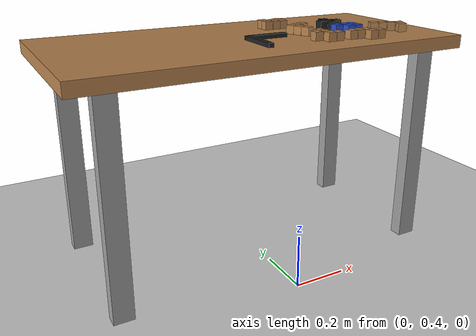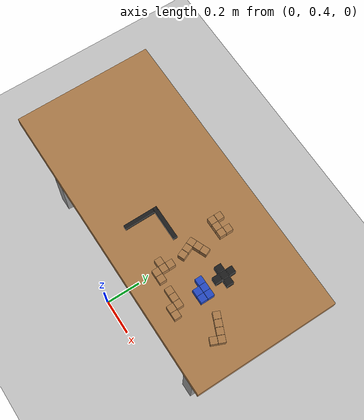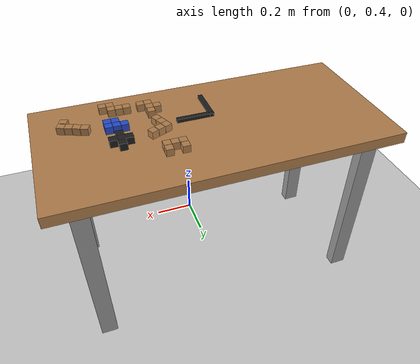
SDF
<?xml version="1.0" ?>
<!-- |    This document was autogenerated by xacro from euroc-freestyle.world.xacro    | -->
<!-- |    EDITING THIS FILE BY HAND IS NOT RECOMMENDED                                 | -->
<sdf version="1.4" xmlns:xacro="http://www.ros.org/wiki/xacro">
  <!-- only 4 yaws are allowed, given by tQ -->
  <!-- Only 0 and 3 (rotated -pi/2) accepted by now -->
  <!-- table pose in world frame -->
  <!-- pentomino-fixture name and pose in table frame -->
  <!-- grid pose in pentomino-fixture frame -->
  <!-- pentomino pose in grid frame -->
  <world name="pentomino_board6x5_8">
    <physics type='ode'>
      <ode>
            <solver>
               <type>quick</type>
            </solver>
      </ode>
      <max_step_size>0.005</max_step_size>
      <real_time_factor>1</real_time_factor>
      <real_time_update_rate>200</real_time_update_rate>
      <gravity>0 0 -9.8</gravity>
    </physics>
    <include>
      <uri>model://ground_plane</uri>
    </include>
    <include>
      <uri>model://sun</uri>
    </include>
    <include>
      <uri>model://DLR_workbench</uri>
      <name>workbench_fixture</name>
      <pose>0 0.8 00 0 0 4.71238898038</pose>
      <static>true</static>
    </include>
    <include>
      <uri>model://pentomino_fixture</uri>
      <pose>-0.01 0.73 0.85 0 0 4.71238898038</pose>
    </include>
    <include>
      <uri>model://pentomino_V</uri>
      <!-- if tQ == 3 -->
      <pose>0.198 0.785 0.85 0 0.0 5.11381470834</pose>
    </include>
    <include>
      <uri>model://pentomino_N</uri>
      <!-- if tQ == 3 -->
      <pose>0.396 0.587 0.883 0 3.14159265359 4.71238898038</pose>
    </include>
    <include>
      <uri>model://pentomino_F</uri>
      <!-- if tQ == 3 -->
      <pose>0.231 0.62 0.883 0 3.14159265359 4.71238898038</pose>
    </include>
    <include>
      <uri>model://pentomino_U</uri>
      <!-- if tQ == 3 -->
      <pose>0.198 0.917 0.85 0 0.0 4.71238898038</pose>
    </include>
    <include>
      <uri>model://pentomino_X</uri>
      <!-- if tQ == 3 -->
      <pose>0.396 0.818 0.85 0 0.0 4.71238898038</pose>
    </include>
    <include>
      <uri>model://pentomino_P</uri>
      <!-- if tQ == 3 -->
      <pose>0.396 0.719 0.85 0 0.0 4.71238898038</pose>
    </include>

    <include>
      <uri>model://pentomino_L</uri>
      <!-- if tQ == 3 -->
      <pose>0.586 0.668 0.850 0 0 -1.971889</pose>
    </include>
  </world>
</sdf>

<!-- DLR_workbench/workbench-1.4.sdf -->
<!-- |    This document was autogenerated by xacro from workbench-1.4.sdf.xacro        | -->
<!-- |    EDITING THIS FILE BY HAND IS NOT RECOMMENDED                                 | -->
<sdf version="1.4" xmlns:xacro="http://www.ros.org/wiki/xacro">
  <model name="DLR_workbench">
    <pose>0 0 0 0 0 0</pose>
    <static>false</static>
    <link name="main_body">
      <pose>0 0 0 0 0 0</pose>
      <!-- workbench top -->
      <collision name="top">
        <geometry>
          <box>
            <size>0.70 1.50 0.05</size>
          </box>
        </geometry>
        <pose>0 0 0.825 0 0 0</pose>
        <surface>
            <friction>
              <ode>
                <mu>0.7</mu>
                <mu2>0.7</mu2>
              </ode>
            </friction>
        </surface>
      </collision>
      <visual name="top">
        <geometry>
          <box>
            <size>0.70 1.50 0.05</size>
          </box>
        </geometry>
        <pose>0 0 0.825 0 0 0</pose>
        <material>
          <script>
            <name>Gazebo/Wood</name>
          </script>
        </material>
      </visual>
      <!-- left rear leg -->
      <collision name="left_rear_leg">
        <geometry>
          <box>
            <size>0.05 0.075 0.80</size>
          </box>
        </geometry>
        <pose>-0.275 -0.6225 0.40 0 0 0</pose>
      </collision>
      <visual name="left_rear_leg">
        <geometry>
          <box>
            <size>0.05 0.075 0.80</size>
          </box>
        </geometry>
        <pose>-0.275 -0.6225 0.40 0 0 0</pose>
        <material>
          <script>
            <name>Gazebo/Grey</name>
          </script>
        </material>
      </visual>
      <!-- right rear leg -->
      <collision name="left_rear_leg">
        <geometry>
          <box>
            <size>0.05 0.075 0.80</size>
          </box>
        </geometry>
        <pose>-0.275 0.6225 0.40 0 0 0</pose>
      </collision>
      <visual name="right_rear_leg">
        <geometry>
          <box>
            <size>0.05 0.075 0.80</size>
          </box>
        </geometry>
        <pose>-0.275 0.6225 0.40 0 0 0</pose>
        <material>
          <script>
            <name>Gazebo/Grey</name>
          </script>
        </material>
      </visual>
      <!-- left front leg -->
      <collision name="left_rear_leg">
        <geometry>
          <box>
            <size>0.05 0.075 0.80</size>
          </box>
        </geometry>
        <pose>0.275 -0.6225 0.40 0 0 0</pose>
      </collision>
      <visual name="left_front_leg">
        <geometry>
          <box>
            <size>0.05 0.075 0.80</size>
          </box>
        </geometry>
        <pose>0.275 -0.6225 0.40 0 0 0</pose>
        <material>
          <script>
            <name>Gazebo/Grey</name>
          </script>
        </material>
      </visual>
      <!-- right front leg -->
      <collision name="left_rear_leg">
        <geometry>
          <box>
            <size>0.05 0.075 0.80</size>
          </box>
        </geometry>
        <pose>0.275 0.6225 0.40 0 0 0</pose>
      </collision>
      <visual name="right_front_leg">
        <geometry>
          <box>
            <size>0.05 0.075 0.80</size>
          </box>
        </geometry>
        <pose>0.275 0.6225 0.40 0 0 0</pose>
        <material>
          <script>
            <name>Gazebo/Grey</name>
          </script>
        </material>
      </visual>
      <!-- inertial model -->
      <inertial>
        <pose>0 0 0.8204 0 0 0</pose>
        <mass>50.0</mass>
        <inertia>
          <!-- interias are tricky to compute -->
          <!-- http://answers.gazebosim.org/question/4372/the-inertia-matrix-explained/ -->
          <ixx>9.60785914583</ixx>
          <ixy>0.0</ixy>
          <ixz>0.0</ixz>
          <iyy>2.20301594404</iyy>
          <iyz>0.0</iyz>
          <izz>11.5369686393</izz>
        </inertia>
      </inertial>
    </link>
  </model>
</sdf>

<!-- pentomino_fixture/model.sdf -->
<!-- |    This document was autogenerated by xacro from model.sdf.xacro                | -->
<!-- |    EDITING THIS FILE BY HAND IS NOT RECOMMENDED                                 | -->
<sdf version="1.4" xmlns:xacro="http://www.ros.org/wiki/xacro">
  <model name="pentomino_fixture">
    <static>true</static>
    <link name="pentomino_fixture">
      <collision name="bar_H">
        <geometry>
          <box>
            <size>0.02 0.17 0.016</size>
          </box>
        </geometry>
        <pose>-0.01 0.065 0.008 0 0 0</pose>
      </collision>
      <visual name="bar_H">
        <geometry>
          <box>
            <size>0.02 0.17 0.016</size>
          </box>
        </geometry>
        <pose>-0.01 0.065 0.008 0 0 0</pose>
        <material>
          <script>
            <name>Gazebo/Black</name>
          </script>
        </material>
      </visual>
      <collision name="bar_V">
        <geometry>
          <box>
            <size>0.02 0.17 0.016</size>
          </box>
        </geometry>
        <pose>0.065 -0.01 0.008 0 0 1.57079632679</pose>
      </collision>
      <visual name="bar_V">
        <geometry>
          <box>
            <size>0.02 0.17 0.016</size>
          </box>
        </geometry>
        <pose>0.065 -0.01 0.008 0 0 1.57079632679</pose>
        <material>
          <script>
            <name>Gazebo/Black</name>
          </script>
        </material>
      </visual>
    </link>
  </model>
</sdf>

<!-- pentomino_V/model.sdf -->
<!-- |    This document was autogenerated by xacro from V.xacro                        | -->
<!-- |    EDITING THIS FILE BY HAND IS NOT RECOMMENDED                                 | -->
<sdf version="1.4" xmlns:xacro="http://www.ros.org/wiki/xacro">
  <model name="pentomino_V">
    <link name="pentomino_V">
      <velocity_decay>
        <linear>0.01</linear>
        <angular>1.0</angular>
      </velocity_decay>
      <visual name="cube_0_0">
        <pose>0.0 0.0 0.0165 0 0 0</pose>
        <geometry>
          <box>
            <size>0.033 0.033 0.033</size>
          </box>
        </geometry>
        <material>
          <script>
            <name>Gazebo/Wood</name>
          </script>
        </material>
      </visual>
      <collision name="cube_0_0">
        <pose>0.0 0.0 0.0165 0 0 0</pose>
        <geometry>
          <box>
            <size>0.033 0.033 0.033</size>
          </box>
        </geometry>
        <surface>
          <bounce>
            <restitution_coefficient>0.0</restitution_coefficient>
          </bounce>
          <friction>
            <ode>
              <mu>1.0</mu>
              <mu2>1.0</mu2>
            </ode>
          </friction>
        </surface>
      </collision>
      <visual name="cube_1_0">
        <pose>0.034 0.0 0.0165 0 0 0</pose>
        <geometry>
          <box>
            <size>0.033 0.033 0.033</size>
          </box>
        </geometry>
        <material>
          <script>
            <name>Gazebo/Wood</name>
          </script>
        </material>
      </visual>
      <collision name="cube_1_0">
        <pose>0.034 0.0 0.0165 0 0 0</pose>
        <geometry>
          <box>
            <size>0.033 0.033 0.033</size>
          </box>
        </geometry>
        <surface>
          <bounce>
            <restitution_coefficient>0.0</restitution_coefficient>
          </bounce>
          <friction>
            <ode>
              <mu>1.0</mu>
              <mu2>1.0</mu2>
            </ode>
          </friction>
        </surface>
      </collision>
      <visual name="cube_2_0">
        <pose>0.068 0.0 0.0165 0 0 0</pose>
        <geometry>
          <box>
            <size>0.033 0.033 0.033</size>
          </box>
        </geometry>
        <material>
          <script>
            <name>Gazebo/Wood</name>
          </script>
        </material>
      </visual>
      <collision name="cube_2_0">
        <pose>0.068 0.0 0.0165 0 0 0</pose>
        <geometry>
          <box>
            <size>0.033 0.033 0.033</size>
          </box>
        </geometry>
        <surface>
          <bounce>
            <restitution_coefficient>0.0</restitution_coefficient>
          </bounce>
          <friction>
            <ode>
              <mu>1.0</mu>
              <mu2>1.0</mu2>
            </ode>
          </friction>
        </surface>
      </collision>
      <visual name="cube_0_1">
        <pose>0.0 0.034 0.0165 0 0 0</pose>
        <geometry>
          <box>
            <size>0.033 0.033 0.033</size>
          </box>
        </geometry>
        <material>
          <script>
            <name>Gazebo/Wood</name>
          </script>
        </material>
      </visual>
      <collision name="cube_0_1">
        <pose>0.0 0.034 0.0165 0 0 0</pose>
        <geometry>
          <box>
            <size>0.033 0.033 0.033</size>
          </box>
        </geometry>
        <surface>
          <bounce>
            <restitution_coefficient>0.0</restitution_coefficient>
          </bounce>
          <friction>
            <ode>
              <mu>1.0</mu>
              <mu2>1.0</mu2>
            </ode>
          </friction>
        </surface>
      </collision>
      <visual name="cube_0_2">
        <pose>0.0 0.068 0.0165 0 0 0</pose>
        <geometry>
          <box>
            <size>0.033 0.033 0.033</size>
          </box>
        </geometry>
        <material>
          <script>
            <name>Gazebo/Wood</name>
          </script>
        </material>
      </visual>
      <collision name="cube_0_2">
        <pose>0.0 0.068 0.0165 0 0 0</pose>
        <geometry>
          <box>
            <size>0.033 0.033 0.033</size>
          </box>
        </geometry>
        <surface>
          <bounce>
            <restitution_coefficient>0.0</restitution_coefficient>
          </bounce>
          <friction>
            <ode>
              <mu>1.0</mu>
              <mu2>1.0</mu2>
            </ode>
          </friction>
        </surface>
      </collision>
      <inertial name="cube_0_0">
        <pose>0.034 0.034 0.0165 0 0 0</pose>
        <mass>0.2</mass>
        <inertia>
          <ixx>0.02178</ixx>
          <!-- TODO -->
          <iyy>0.02178</iyy>
          <izz>0.02178</izz>
          <ixy>0</ixy>
          <ixz>0</ixz>
          <iyz>0</iyz>
        </inertia>
      </inertial>
    </link>
  </model>
</sdf>

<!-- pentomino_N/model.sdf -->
<!-- |    This document was autogenerated by xacro from N.xacro                        | -->
<!-- |    EDITING THIS FILE BY HAND IS NOT RECOMMENDED                                 | -->
<sdf version="1.4" xmlns:xacro="http://www.ros.org/wiki/xacro">
  <model name="pentomino_N">
    <link name="pentomino_N">
      <velocity_decay>
        <linear>0.01</linear>
        <angular>1.0</angular>
      </velocity_decay>
      <visual name="cube_0_0">
        <pose>0.0 0.0 0.0165 0 0 0</pose>
        <geometry>
          <box>
            <size>0.033 0.033 0.033</size>
          </box>
        </geometry>
        <material>
          <script>
            <name>Gazebo/Wood</name>
          </script>
        </material>
      </visual>
      <collision name="cube_0_0">
        <pose>0.0 0.0 0.0165 0 0 0</pose>
        <geometry>
          <box>
            <size>0.033 0.033 0.033</size>
          </box>
        </geometry>
        <surface>
          <bounce>
            <restitution_coefficient>0.0</restitution_coefficient>
          </bounce>
          <friction>
            <ode>
              <mu>1.0</mu>
              <mu2>1.0</mu2>
            </ode>
          </friction>
        </surface>
      </collision>
      <visual name="cube_0_-1">
        <pose>0.0 -0.034 0.0165 0 0 0</pose>
        <geometry>
          <box>
            <size>0.033 0.033 0.033</size>
          </box>
        </geometry>
        <material>
          <script>
            <name>Gazebo/Wood</name>
          </script>
        </material>
      </visual>
      <collision name="cube_0_-1">
        <pose>0.0 -0.034 0.0165 0 0 0</pose>
        <geometry>
          <box>
            <size>0.033 0.033 0.033</size>
          </box>
        </geometry>
        <surface>
          <bounce>
            <restitution_coefficient>0.0</restitution_coefficient>
          </bounce>
          <friction>
            <ode>
              <mu>1.0</mu>
              <mu2>1.0</mu2>
            </ode>
          </friction>
        </surface>
      </collision>
      <visual name="cube_0_-2">
        <pose>0.0 -0.068 0.0165 0 0 0</pose>
        <geometry>
          <box>
            <size>0.033 0.033 0.033</size>
          </box>
        </geometry>
        <material>
          <script>
            <name>Gazebo/Wood</name>
          </script>
        </material>
      </visual>
      <collision name="cube_0_-2">
        <pose>0.0 -0.068 0.0165 0 0 0</pose>
        <geometry>
          <box>
            <size>0.033 0.033 0.033</size>
          </box>
        </geometry>
        <surface>
          <bounce>
            <restitution_coefficient>0.0</restitution_coefficient>
          </bounce>
          <friction>
            <ode>
              <mu>1.0</mu>
              <mu2>1.0</mu2>
            </ode>
          </friction>
        </surface>
      </collision>
      <visual name="cube_-1_0">
        <pose>-0.034 0.0 0.0165 0 0 0</pose>
        <geometry>
          <box>
            <size>0.033 0.033 0.033</size>
          </box>
        </geometry>
        <material>
          <script>
            <name>Gazebo/Wood</name>
          </script>
        </material>
      </visual>
      <collision name="cube_-1_0">
        <pose>-0.034 0.0 0.0165 0 0 0</pose>
        <geometry>
          <box>
            <size>0.033 0.033 0.033</size>
          </box>
        </geometry>
        <surface>
          <bounce>
            <restitution_coefficient>0.0</restitution_coefficient>
          </bounce>
          <friction>
            <ode>
              <mu>1.0</mu>
              <mu2>1.0</mu2>
            </ode>
          </friction>
        </surface>
      </collision>
      <visual name="cube_-1_1">
        <pose>-0.034 0.034 0.0165 0 0 0</pose>
        <geometry>
          <box>
            <size>0.033 0.033 0.033</size>
          </box>
        </geometry>
        <material>
          <script>
            <name>Gazebo/Wood</name>
          </script>
        </material>
      </visual>
      <collision name="cube_-1_1">
        <pose>-0.034 0.034 0.0165 0 0 0</pose>
        <geometry>
          <box>
            <size>0.033 0.033 0.033</size>
          </box>
        </geometry>
        <surface>
          <bounce>
            <restitution_coefficient>0.0</restitution_coefficient>
          </bounce>
          <friction>
            <ode>
              <mu>1.0</mu>
              <mu2>1.0</mu2>
            </ode>
          </friction>
        </surface>
      </collision>
      <inertial name="cube_0_0">
        <pose>0.034 0.034 0.0165 0 0 0</pose>
        <mass>0.2</mass>
        <inertia>
          <ixx>0.02178</ixx>
          <!-- TODO -->
          <iyy>0.02178</iyy>
          <izz>0.02178</izz>
          <ixy>0</ixy>
          <ixz>0</ixz>
          <iyz>0</iyz>
        </inertia>
      </inertial>
    </link>
  </model>
</sdf>

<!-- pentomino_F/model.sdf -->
<!-- |    This document was autogenerated by xacro from F.xacro                        | -->
<!-- |    EDITING THIS FILE BY HAND IS NOT RECOMMENDED                                 | -->
<sdf version="1.4" xmlns:xacro="http://www.ros.org/wiki/xacro">
  <model name="pentomino_F">
    <link name="pentomino_F">
      <velocity_decay>
        <linear>0.01</linear>
        <angular>1.0</angular>
      </velocity_decay>
      <visual name="cube_0_0">
        <pose>0.0 0.0 0.0165 0 0 0</pose>
        <geometry>
          <box>
            <size>0.033 0.033 0.033</size>
          </box>
        </geometry>
        <material>
          <script>
            <name>Gazebo/Wood</name>
          </script>
        </material>
      </visual>
      <collision name="cube_0_0">
        <pose>0.0 0.0 0.0165 0 0 0</pose>
        <geometry>
          <box>
            <size>0.033 0.033 0.033</size>
          </box>
        </geometry>
        <surface>
          <bounce>
            <restitution_coefficient>0.0</restitution_coefficient>
          </bounce>
          <friction>
            <ode>
              <mu>1.0</mu>
              <mu2>1.0</mu2>
            </ode>
          </friction>
        </surface>
      </collision>
      <visual name="cube_0_-1">
        <pose>0.0 -0.034 0.0165 0 0 0</pose>
        <geometry>
          <box>
            <size>0.033 0.033 0.033</size>
          </box>
        </geometry>
        <material>
          <script>
            <name>Gazebo/Wood</name>
          </script>
        </material>
      </visual>
      <collision name="cube_0_-1">
        <pose>0.0 -0.034 0.0165 0 0 0</pose>
        <geometry>
          <box>
            <size>0.033 0.033 0.033</size>
          </box>
        </geometry>
        <surface>
          <bounce>
            <restitution_coefficient>0.0</restitution_coefficient>
          </bounce>
          <friction>
            <ode>
              <mu>1.0</mu>
              <mu2>1.0</mu2>
            </ode>
          </friction>
        </surface>
      </collision>
      <visual name="cube_1_0">
        <pose>0.034 0.0 0.0165 0 0 0</pose>
        <geometry>
          <box>
            <size>0.033 0.033 0.033</size>
          </box>
        </geometry>
        <material>
          <script>
            <name>Gazebo/Wood</name>
          </script>
        </material>
      </visual>
      <collision name="cube_1_0">
        <pose>0.034 0.0 0.0165 0 0 0</pose>
        <geometry>
          <box>
            <size>0.033 0.033 0.033</size>
          </box>
        </geometry>
        <surface>
          <bounce>
            <restitution_coefficient>0.0</restitution_coefficient>
          </bounce>
          <friction>
            <ode>
              <mu>1.0</mu>
              <mu2>1.0</mu2>
            </ode>
          </friction>
        </surface>
      </collision>
      <visual name="cube_-1_0">
        <pose>-0.034 0.0 0.0165 0 0 0</pose>
        <geometry>
          <box>
            <size>0.033 0.033 0.033</size>
          </box>
        </geometry>
        <material>
          <script>
            <name>Gazebo/Wood</name>
          </script>
        </material>
      </visual>
      <collision name="cube_-1_0">
        <pose>-0.034 0.0 0.0165 0 0 0</pose>
        <geometry>
          <box>
            <size>0.033 0.033 0.033</size>
          </box>
        </geometry>
        <surface>
          <bounce>
            <restitution_coefficient>0.0</restitution_coefficient>
          </bounce>
          <friction>
            <ode>
              <mu>1.0</mu>
              <mu2>1.0</mu2>
            </ode>
          </friction>
        </surface>
      </collision>
      <visual name="cube_-1_1">
        <pose>-0.034 0.034 0.0165 0 0 0</pose>
        <geometry>
          <box>
            <size>0.033 0.033 0.033</size>
          </box>
        </geometry>
        <material>
          <script>
            <name>Gazebo/Wood</name>
          </script>
        </material>
      </visual>
      <collision name="cube_-1_1">
        <pose>-0.034 0.034 0.0165 0 0 0</pose>
        <geometry>
          <box>
            <size>0.033 0.033 0.033</size>
          </box>
        </geometry>
        <surface>
          <bounce>
            <restitution_coefficient>0.0</restitution_coefficient>
          </bounce>
          <friction>
            <ode>
              <mu>1.0</mu>
              <mu2>1.0</mu2>
            </ode>
          </friction>
        </surface>
      </collision>
      <inertial name="cube_0_0">
        <pose>0.034 0.034 0.0165 0 0 0</pose>
        <mass>0.2</mass>
        <inertia>
          <ixx>0.02178</ixx>
          <!-- TODO -->
          <iyy>0.02178</iyy>
          <izz>0.02178</izz>
          <ixy>0</ixy>
          <ixz>0</ixz>
          <iyz>0</iyz>
        </inertia>
      </inertial>
    </link>
  </model>
</sdf>

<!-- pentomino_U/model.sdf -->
<!-- |    This document was autogenerated by xacro from U.xacro                        | -->
<!-- |    EDITING THIS FILE BY HAND IS NOT RECOMMENDED                                 | -->
<sdf version="1.4" xmlns:xacro="http://www.ros.org/wiki/xacro">
  <model name="pentomino_U">
    <link name="pentomino_U">
      <velocity_decay>
        <linear>0.01</linear>
        <angular>1.0</angular>
      </velocity_decay>
      <visual name="cube_0_0">
        <pose>0.0 0.0 0.0165 0 0 0</pose>
        <geometry>
          <box>
            <size>0.033 0.033 0.033</size>
          </box>
        </geometry>
        <material>
          <script>
            <name>Gazebo/Wood</name>
          </script>
        </material>
      </visual>
      <collision name="cube_0_0">
        <pose>0.0 0.0 0.0165 0 0 0</pose>
        <geometry>
          <box>
            <size>0.033 0.033 0.033</size>
          </box>
        </geometry>
        <surface>
          <bounce>
            <restitution_coefficient>0.0</restitution_coefficient>
          </bounce>
          <friction>
            <ode>
              <mu>1.0</mu>
              <mu2>1.0</mu2>
            </ode>
          </friction>
        </surface>
      </collision>
      <visual name="cube_0_-1">
        <pose>0.0 -0.034 0.0165 0 0 0</pose>
        <geometry>
          <box>
            <size>0.033 0.033 0.033</size>
          </box>
        </geometry>
        <material>
          <script>
            <name>Gazebo/Wood</name>
          </script>
        </material>
      </visual>
      <collision name="cube_0_-1">
        <pose>0.0 -0.034 0.0165 0 0 0</pose>
        <geometry>
          <box>
            <size>0.033 0.033 0.033</size>
          </box>
        </geometry>
        <surface>
          <bounce>
            <restitution_coefficient>0.0</restitution_coefficient>
          </bounce>
          <friction>
            <ode>
              <mu>1.0</mu>
              <mu2>1.0</mu2>
            </ode>
          </friction>
        </surface>
      </collision>
      <visual name="cube_0_1">
        <pose>0.0 0.034 0.0165 0 0 0</pose>
        <geometry>
          <box>
            <size>0.033 0.033 0.033</size>
          </box>
        </geometry>
        <material>
          <script>
            <name>Gazebo/Wood</name>
          </script>
        </material>
      </visual>
      <collision name="cube_0_1">
        <pose>0.0 0.034 0.0165 0 0 0</pose>
        <geometry>
          <box>
            <size>0.033 0.033 0.033</size>
          </box>
        </geometry>
        <surface>
          <bounce>
            <restitution_coefficient>0.0</restitution_coefficient>
          </bounce>
          <friction>
            <ode>
              <mu>1.0</mu>
              <mu2>1.0</mu2>
            </ode>
          </friction>
        </surface>
      </collision>
      <visual name="cube_-1_-1">
        <pose>-0.034 -0.034 0.0165 0 0 0</pose>
        <geometry>
          <box>
            <size>0.033 0.033 0.033</size>
          </box>
        </geometry>
        <material>
          <script>
            <name>Gazebo/Wood</name>
          </script>
        </material>
      </visual>
      <collision name="cube_-1_-1">
        <pose>-0.034 -0.034 0.0165 0 0 0</pose>
        <geometry>
          <box>
            <size>0.033 0.033 0.033</size>
          </box>
        </geometry>
        <surface>
          <bounce>
            <restitution_coefficient>0.0</restitution_coefficient>
          </bounce>
          <friction>
            <ode>
              <mu>1.0</mu>
              <mu2>1.0</mu2>
            </ode>
          </friction>
        </surface>
      </collision>
      <visual name="cube_-1_1">
        <pose>-0.034 0.034 0.0165 0 0 0</pose>
        <geometry>
          <box>
            <size>0.033 0.033 0.033</size>
          </box>
        </geometry>
        <material>
          <script>
            <name>Gazebo/Wood</name>
          </script>
        </material>
      </visual>
      <collision name="cube_-1_1">
        <pose>-0.034 0.034 0.0165 0 0 0</pose>
        <geometry>
          <box>
            <size>0.033 0.033 0.033</size>
          </box>
        </geometry>
        <surface>
          <bounce>
            <restitution_coefficient>0.0</restitution_coefficient>
          </bounce>
          <friction>
            <ode>
              <mu>1.0</mu>
              <mu2>1.0</mu2>
            </ode>
          </friction>
        </surface>
      </collision>
      <inertial name="cube_0_0">
        <pose>0.034 0.034 0.0165 0 0 0</pose>
        <mass>0.2</mass>
        <inertia>
          <ixx>0.02178</ixx>
          <!-- TODO -->
          <iyy>0.02178</iyy>
          <izz>0.02178</izz>
          <ixy>0</ixy>
          <ixz>0</ixz>
          <iyz>0</iyz>
        </inertia>
      </inertial>
    </link>
  </model>
</sdf>

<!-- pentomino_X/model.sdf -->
<!-- |    This document was autogenerated by xacro from X.xacro                        | -->
<!-- |    EDITING THIS FILE BY HAND IS NOT RECOMMENDED                                 | -->
<sdf version="1.4" xmlns:xacro="http://www.ros.org/wiki/xacro">
  <model name="pentomino_X">
    <link name="pentomino_X">
      <velocity_decay>
        <linear>0.01</linear>
        <angular>1.0</angular>
      </velocity_decay>
      <visual name="cube_0_0">
        <pose>0.0 0.0 0.0165 0 0 0</pose>
        <geometry>
          <box>
            <size>0.033 0.033 0.033</size>
          </box>
        </geometry>
        <material>
          <script>
            <name>Gazebo/Black</name>
          </script>
        </material>
      </visual>
      <collision name="cube_0_0">
        <pose>0.0 0.0 0.0165 0 0 0</pose>
        <geometry>
          <box>
            <size>0.033 0.033 0.033</size>
          </box>
        </geometry>
        <surface>
          <bounce>
            <restitution_coefficient>0.0</restitution_coefficient>
          </bounce>
          <friction>
            <ode>
              <mu>1.0</mu>
              <mu2>1.0</mu2>
            </ode>
          </friction>
        </surface>
      </collision>
      <visual name="cube_-1_0">
        <pose>-0.034 0.0 0.0165 0 0 0</pose>
        <geometry>
          <box>
            <size>0.033 0.033 0.033</size>
          </box>
        </geometry>
        <material>
          <script>
            <name>Gazebo/Black</name>
          </script>
        </material>
      </visual>
      <collision name="cube_-1_0">
        <pose>-0.034 0.0 0.0165 0 0 0</pose>
        <geometry>
          <box>
            <size>0.033 0.033 0.033</size>
          </box>
        </geometry>
        <surface>
          <bounce>
            <restitution_coefficient>0.0</restitution_coefficient>
          </bounce>
          <friction>
            <ode>
              <mu>1.0</mu>
              <mu2>1.0</mu2>
            </ode>
          </friction>
        </surface>
      </collision>
      <visual name="cube_1_0">
        <pose>0.034 0.0 0.0165 0 0 0</pose>
        <geometry>
          <box>
            <size>0.033 0.033 0.033</size>
          </box>
        </geometry>
        <material>
          <script>
            <name>Gazebo/Black</name>
          </script>
        </material>
      </visual>
      <collision name="cube_1_0">
        <pose>0.034 0.0 0.0165 0 0 0</pose>
        <geometry>
          <box>
            <size>0.033 0.033 0.033</size>
          </box>
        </geometry>
        <surface>
          <bounce>
            <restitution_coefficient>0.0</restitution_coefficient>
          </bounce>
          <friction>
            <ode>
              <mu>1.0</mu>
              <mu2>1.0</mu2>
            </ode>
          </friction>
        </surface>
      </collision>
      <visual name="cube_0_-1">
        <pose>0.0 -0.034 0.0165 0 0 0</pose>
        <geometry>
          <box>
            <size>0.033 0.033 0.033</size>
          </box>
        </geometry>
        <material>
          <script>
            <name>Gazebo/Black</name>
          </script>
        </material>
      </visual>
      <collision name="cube_0_-1">
        <pose>0.0 -0.034 0.0165 0 0 0</pose>
        <geometry>
          <box>
            <size>0.033 0.033 0.033</size>
          </box>
        </geometry>
        <surface>
          <bounce>
            <restitution_coefficient>0.0</restitution_coefficient>
          </bounce>
          <friction>
            <ode>
              <mu>1.0</mu>
              <mu2>1.0</mu2>
            </ode>
          </friction>
        </surface>
      </collision>
      <visual name="cube_0_1">
        <pose>0.0 0.034 0.0165 0 0 0</pose>
        <geometry>
          <box>
            <size>0.033 0.033 0.033</size>
          </box>
        </geometry>
        <material>
          <script>
            <name>Gazebo/Black</name>
          </script>
        </material>
      </visual>
      <collision name="cube_0_1">
        <pose>0.0 0.034 0.0165 0 0 0</pose>
        <geometry>
          <box>
            <size>0.033 0.033 0.033</size>
          </box>
        </geometry>
        <surface>
          <bounce>
            <restitution_coefficient>0.0</restitution_coefficient>
          </bounce>
          <friction>
            <ode>
              <mu>1.0</mu>
              <mu2>1.0</mu2>
            </ode>
          </friction>
        </surface>
      </collision>
      <inertial name="cube_0_0">
        <pose>0.034 0.034 0.0165 0 0 0</pose>
        <mass>0.2</mass>
        <inertia>
          <ixx>0.02178</ixx>
          <!-- TODO -->
          <iyy>0.02178</iyy>
          <izz>0.02178</izz>
          <ixy>0</ixy>
          <ixz>0</ixz>
          <iyz>0</iyz>
        </inertia>
      </inertial>
    </link>
  </model>
</sdf>

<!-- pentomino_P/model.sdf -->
<!-- |    This document was autogenerated by xacro from P.xacro                        | -->
<!-- |    EDITING THIS FILE BY HAND IS NOT RECOMMENDED                                 | -->
<sdf version="1.4" xmlns:xacro="http://www.ros.org/wiki/xacro">
  <model name="pentomino_P">
    <link name="pentomino_P">
      <velocity_decay>
        <linear>0.01</linear>
        <angular>1.0</angular>
      </velocity_decay>
      <visual name="cube_0_0">
        <pose>0.0 0.0 0.0165 0 0 0</pose>
        <geometry>
          <box>
            <size>0.033 0.033 0.033</size>
          </box>
        </geometry>
        <material>
          <script>
            <name>Gazebo/Blue</name>
          </script>
        </material>
      </visual>
      <collision name="cube_0_0">
        <pose>0.0 0.0 0.0165 0 0 0</pose>
        <geometry>
          <box>
            <size>0.033 0.033 0.033</size>
          </box>
        </geometry>
        <surface>
          <bounce>
            <restitution_coefficient>0.0</restitution_coefficient>
          </bounce>
          <friction>
            <ode>
              <mu>1.0</mu>
              <mu2>1.0</mu2>
            </ode>
          </friction>
        </surface>
      </collision>
      <visual name="cube_0_-1">
        <pose>0.0 -0.034 0.0165 0 0 0</pose>
        <geometry>
          <box>
            <size>0.033 0.033 0.033</size>
          </box>
        </geometry>
        <material>
          <script>
            <name>Gazebo/Blue</name>
          </script>
        </material>
      </visual>
      <collision name="cube_0_-1">
        <pose>0.0 -0.034 0.0165 0 0 0</pose>
        <geometry>
          <box>
            <size>0.033 0.033 0.033</size>
          </box>
        </geometry>
        <surface>
          <bounce>
            <restitution_coefficient>0.0</restitution_coefficient>
          </bounce>
          <friction>
            <ode>
              <mu>1.0</mu>
              <mu2>1.0</mu2>
            </ode>
          </friction>
        </surface>
      </collision>
      <visual name="cube_0_1">
        <pose>0.0 0.034 0.0165 0 0 0</pose>
        <geometry>
          <box>
            <size>0.033 0.033 0.033</size>
          </box>
        </geometry>
        <material>
          <script>
            <name>Gazebo/Blue</name>
          </script>
        </material>
      </visual>
      <collision name="cube_0_1">
        <pose>0.0 0.034 0.0165 0 0 0</pose>
        <geometry>
          <box>
            <size>0.033 0.033 0.033</size>
          </box>
        </geometry>
        <surface>
          <bounce>
            <restitution_coefficient>0.0</restitution_coefficient>
          </bounce>
          <friction>
            <ode>
              <mu>1.0</mu>
              <mu2>1.0</mu2>
            </ode>
          </friction>
        </surface>
      </collision>
      <visual name="cube_1_0">
        <pose>0.034 0.0 0.0165 0 0 0</pose>
        <geometry>
          <box>
            <size>0.033 0.033 0.033</size>
          </box>
        </geometry>
        <material>
          <script>
            <name>Gazebo/Blue</name>
          </script>
        </material>
      </visual>
      <collision name="cube_1_0">
        <pose>0.034 0.0 0.0165 0 0 0</pose>
        <geometry>
          <box>
            <size>0.033 0.033 0.033</size>
          </box>
        </geometry>
        <surface>
          <bounce>
            <restitution_coefficient>0.0</restitution_coefficient>
          </bounce>
          <friction>
            <ode>
              <mu>1.0</mu>
              <mu2>1.0</mu2>
            </ode>
          </friction>
        </surface>
      </collision>
      <visual name="cube_1_1">
        <pose>0.034 0.034 0.0165 0 0 0</pose>
        <geometry>
          <box>
            <size>0.033 0.033 0.033</size>
          </box>
        </geometry>
        <material>
          <script>
            <name>Gazebo/Blue</name>
          </script>
        </material>
      </visual>
      <collision name="cube_1_1">
        <pose>0.034 0.034 0.0165 0 0 0</pose>
        <geometry>
          <box>
            <size>0.033 0.033 0.033</size>
          </box>
        </geometry>
        <surface>
          <bounce>
            <restitution_coefficient>0.0</restitution_coefficient>
          </bounce>
          <friction>
            <ode>
              <mu>1.0</mu>
              <mu2>1.0</mu2>
            </ode>
          </friction>
        </surface>
      </collision>
      <inertial name="cube_0_0">
        <pose>0.034 0.034 0.0165 0 0 0</pose>
        <mass>0.2</mass>
        <inertia>
          <ixx>0.02178</ixx>
          <!-- TODO -->
          <iyy>0.02178</iyy>
          <izz>0.02178</izz>
          <ixy>0</ixy>
          <ixz>0</ixz>
          <iyz>0</iyz>
        </inertia>
      </inertial>
    </link>
  </model>
</sdf>

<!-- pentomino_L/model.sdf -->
<!-- |    This document was autogenerated by xacro from L.xacro                        | -->
<!-- |    EDITING THIS FILE BY HAND IS NOT RECOMMENDED                                 | -->
<sdf version="1.4" xmlns:xacro="http://www.ros.org/wiki/xacro">
  <model name="pentomino_L">
    <link name="pentomino_L">
      <velocity_decay>
        <linear>0.01</linear>
        <angular>1.0</angular>
      </velocity_decay>
      <visual name="cube_0_0">
        <pose>0.0 0.0 0.0165 0 0 0</pose>
        <geometry>
          <box>
            <size>0.033 0.033 0.033</size>
          </box>
        </geometry>
        <material>
          <script>
            <name>Gazebo/Wood</name>
          </script>
        </material>
      </visual>
      <collision name="cube_0_0">
        <pose>0.0 0.0 0.0165 0 0 0</pose>
        <geometry>
          <box>
            <size>0.033 0.033 0.033</size>
          </box>
        </geometry>
        <surface>
          <bounce>
            <restitution_coefficient>0.0</restitution_coefficient>
          </bounce>
          <friction>
            <ode>
              <mu>1.0</mu>
              <mu2>1.0</mu2>
            </ode>
          </friction>
        </surface>
      </collision>
      <visual name="cube_0_-1">
        <pose>0.0 -0.034 0.0165 0 0 0</pose>
        <geometry>
          <box>
            <size>0.033 0.033 0.033</size>
          </box>
        </geometry>
        <material>
          <script>
            <name>Gazebo/Wood</name>
          </script>
        </material>
      </visual>
      <collision name="cube_0_-1">
        <pose>0.0 -0.034 0.0165 0 0 0</pose>
        <geometry>
          <box>
            <size>0.033 0.033 0.033</size>
          </box>
        </geometry>
        <surface>
          <bounce>
            <restitution_coefficient>0.0</restitution_coefficient>
          </bounce>
          <friction>
            <ode>
              <mu>1.0</mu>
              <mu2>1.0</mu2>
            </ode>
          </friction>
        </surface>
      </collision>
      <visual name="cube_0_-2">
        <pose>0.0 -0.068 0.0165 0 0 0</pose>
        <geometry>
          <box>
            <size>0.033 0.033 0.033</size>
          </box>
        </geometry>
        <material>
          <script>
            <name>Gazebo/Wood</name>
          </script>
        </material>
      </visual>
      <collision name="cube_0_-2">
        <pose>0.0 -0.068 0.0165 0 0 0</pose>
        <geometry>
          <box>
            <size>0.033 0.033 0.033</size>
          </box>
        </geometry>
        <surface>
          <bounce>
            <restitution_coefficient>0.0</restitution_coefficient>
          </bounce>
          <friction>
            <ode>
              <mu>1.0</mu>
              <mu2>1.0</mu2>
            </ode>
          </friction>
        </surface>
      </collision>
      <visual name="cube_0_1">
        <pose>0.0 0.034 0.0165 0 0 0</pose>
        <geometry>
          <box>
            <size>0.033 0.033 0.033</size>
          </box>
        </geometry>
        <material>
          <script>
            <name>Gazebo/Wood</name>
          </script>
        </material>
      </visual>
      <collision name="cube_0_1">
        <pose>0.0 0.034 0.0165 0 0 0</pose>
        <geometry>
          <box>
            <size>0.033 0.033 0.033</size>
          </box>
        </geometry>
        <surface>
          <bounce>
            <restitution_coefficient>0.0</restitution_coefficient>
          </bounce>
          <friction>
            <ode>
              <mu>1.0</mu>
              <mu2>1.0</mu2>
            </ode>
          </friction>
        </surface>
      </collision>
      <visual name="cube_1_1">
        <pose>0.034 0.034 0.0165 0 0 0</pose>
        <geometry>
          <box>
            <size>0.033 0.033 0.033</size>
          </box>
        </geometry>
        <material>
          <script>
            <name>Gazebo/Wood</name>
          </script>
        </material>
      </visual>
      <collision name="cube_1_1">
        <pose>0.034 0.034 0.0165 0 0 0</pose>
        <geometry>
          <box>
            <size>0.033 0.033 0.033</size>
          </box>
        </geometry>
        <surface>
          <bounce>
            <restitution_coefficient>0.0</restitution_coefficient>
          </bounce>
          <friction>
            <ode>
              <mu>1.0</mu>
              <mu2>1.0</mu2>
            </ode>
          </friction>
        </surface>
      </collision>
      <inertial name="cube_0_0">
        <pose>0.034 0.034 0.0165 0 0 0</pose>
        <mass>0.2</mass>
        <inertia>
          <ixx>0.02178</ixx>
          <!-- TODO -->
          <iyy>0.02178</iyy>
          <izz>0.02178</izz>
          <ixy>0</ixy>
          <ixz>0</ixz>
          <iyz>0</iyz>
        </inertia>
      </inertial>
    </link>
  </model>
</sdf>
